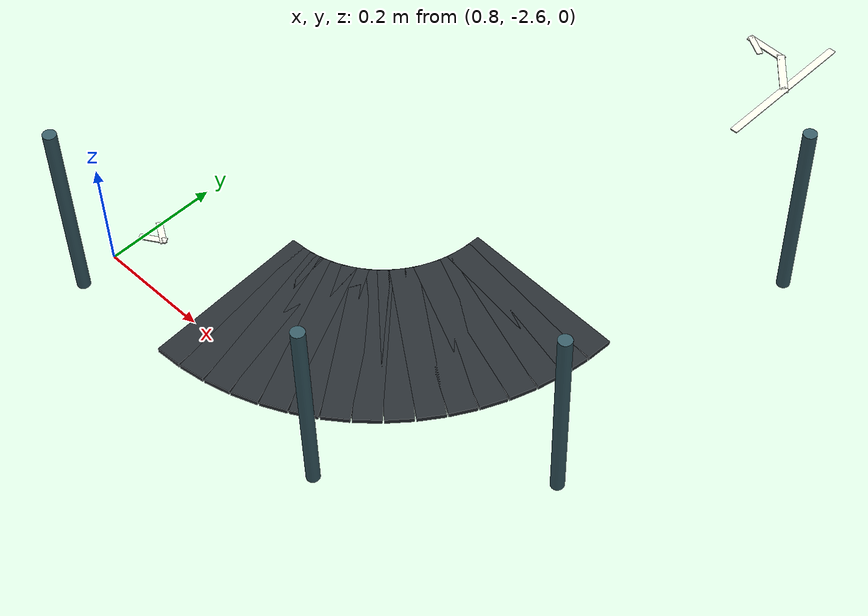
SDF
<sdf version="1.6">
 <world name="sandbox">
  <include><uri>model://sun</uri></include>
  <model name="fence_post_east_0">
   <static>true</static>
   <pose>1.620000 -2.430000 0.170000 0.000000 0.000000 0.000000</pose>
   <link name="body">
    <collision name="collision">
     <geometry><cylinder><radius>0.011000</radius><length>0.340000</length></cylinder></geometry>
    </collision>
    <visual name="visual">
     <geometry><cylinder><radius>0.011000</radius><length>0.340000</length></cylinder></geometry>
     <material><ambient>0.22 0.36 0.40 1</ambient><diffuse>0.22 0.36 0.40 1</diffuse></material>
    </visual>
   </link>
  </model>
  <model name="fence_post_east_1">
   <static>true</static>
   <pose>1.620000 -1.890000 0.170000 0.000000 0.000000 0.000000</pose>
   <link name="body">
    <collision name="collision">
     <geometry><cylinder><radius>0.011000</radius><length>0.340000</length></cylinder></geometry>
    </collision>
    <visual name="visual">
     <geometry><cylinder><radius>0.011000</radius><length>0.340000</length></cylinder></geometry>
     <material><ambient>0.22 0.36 0.40 1</ambient><diffuse>0.22 0.36 0.40 1</diffuse></material>
    </visual>
   </link>
  </model>
  <model name="fence_post_south_4">
   <static>true</static>
   <pose>0.810000 -2.670000 0.170000 0.000000 0.000000 0.000000</pose>
   <link name="body">
    <collision name="collision">
     <geometry><cylinder><radius>0.011000</radius><length>0.340000</length></cylinder></geometry>
    </collision>
    <visual name="visual">
     <geometry><cylinder><radius>0.011000</radius><length>0.340000</length></cylinder></geometry>
     <material><ambient>0.22 0.36 0.40 1</ambient><diffuse>0.22 0.36 0.40 1</diffuse></material>
    </visual>
   </link>
  </model>
  <model name="fence_post_south_5">
   <static>true</static>
   <pose>1.350000 -2.670000 0.170000 0.000000 0.000000 0.000000</pose>
   <link name="body">
    <collision name="collision">
     <geometry><cylinder><radius>0.011000</radius><length>0.340000</length></cylinder></geometry>
    </collision>
    <visual name="visual">
     <geometry><cylinder><radius>0.011000</radius><length>0.340000</length></cylinder></geometry>
     <material><ambient>0.22 0.36 0.40 1</ambient><diffuse>0.22 0.36 0.40 1</diffuse></material>
    </visual>
   </link>
  </model>
  <model name="corner_bottom_right_00">
   <static>true</static>
   <pose>1.349157 -2.192153 0.000000 0.000000 -0.000000 -1.619884</pose>
   <link name="body">
    <visual name="visual">
     <geometry><box><size>0.046347 0.300000 0.008000</size></box></geometry>
     <material><ambient>0.16 0.18 0.20 1</ambient><diffuse>0.16 0.18 0.20 1</diffuse></material>
    </visual>
   </link>
  </model>
  <model name="corner_bottom_right_01">
   <static>true</static>
   <pose>1.345795 -2.226294 0.000000 0.000000 -0.000000 -1.718058</pose>
   <link name="body">
    <visual name="visual">
     <geometry><box><size>0.046347 0.300000 0.008000</size></box></geometry>
     <material><ambient>0.16 0.18 0.20 1</ambient><diffuse>0.16 0.18 0.20 1</diffuse></material>
    </visual>
   </link>
  </model>
  <model name="corner_bottom_right_02">
   <static>true</static>
   <pose>1.339102 -2.259941 0.000000 0.000000 -0.000000 -1.816233</pose>
   <link name="body">
    <visual name="visual">
     <geometry><box><size>0.046347 0.300000 0.008000</size></box></geometry>
     <material><ambient>0.16 0.18 0.20 1</ambient><diffuse>0.16 0.18 0.20 1</diffuse></material>
    </visual>
   </link>
  </model>
  <model name="corner_bottom_right_03">
   <static>true</static>
   <pose>1.329143 -2.292769 0.000000 0.000000 -0.000000 -1.914408</pose>
   <link name="body">
    <visual name="visual">
     <geometry><box><size>0.046347 0.300000 0.008000</size></box></geometry>
     <material><ambient>0.16 0.18 0.20 1</ambient><diffuse>0.16 0.18 0.20 1</diffuse></material>
    </visual>
   </link>
  </model>
  <model name="corner_bottom_right_04">
   <static>true</static>
   <pose>1.316015 -2.324464 0.000000 0.000000 -0.000000 -2.012583</pose>
   <link name="body">
    <visual name="visual">
     <geometry><box><size>0.046347 0.300000 0.008000</size></box></geometry>
     <material><ambient>0.16 0.18 0.20 1</ambient><diffuse>0.16 0.18 0.20 1</diffuse></material>
    </visual>
   </link>
  </model>
  <model name="corner_bottom_right_05">
   <static>true</static>
   <pose>1.299843 -2.354719 0.000000 0.000000 -0.000000 -2.110758</pose>
   <link name="body">
    <visual name="visual">
     <geometry><box><size>0.046347 0.300000 0.008000</size></box></geometry>
     <material><ambient>0.16 0.18 0.20 1</ambient><diffuse>0.16 0.18 0.20 1</diffuse></material>
    </visual>
   </link>
  </model>
  <model name="corner_bottom_right_06">
   <static>true</static>
   <pose>1.280784 -2.383244 0.000000 0.000000 -0.000000 -2.208932</pose>
   <link name="body">
    <visual name="visual">
     <geometry><box><size>0.046347 0.300000 0.008000</size></box></geometry>
     <material><ambient>0.16 0.18 0.20 1</ambient><diffuse>0.16 0.18 0.20 1</diffuse></material>
    </visual>
   </link>
  </model>
  <model name="corner_bottom_right_07">
   <static>true</static>
   <pose>1.259021 -2.409763 0.000000 0.000000 -0.000000 -2.307107</pose>
   <link name="body">
    <visual name="visual">
     <geometry><box><size>0.046347 0.300000 0.008000</size></box></geometry>
     <material><ambient>0.16 0.18 0.20 1</ambient><diffuse>0.16 0.18 0.20 1</diffuse></material>
    </visual>
   </link>
  </model>
  <model name="corner_bottom_right_08">
   <static>true</static>
   <pose>1.234763 -2.434021 0.000000 0.000000 -0.000000 -2.405282</pose>
   <link name="body">
    <visual name="visual">
     <geometry><box><size>0.046347 0.300000 0.008000</size></box></geometry>
     <material><ambient>0.16 0.18 0.20 1</ambient><diffuse>0.16 0.18 0.20 1</diffuse></material>
    </visual>
   </link>
  </model>
  <model name="corner_bottom_right_09">
   <static>true</static>
   <pose>1.208244 -2.455784 0.000000 0.000000 -0.000000 -2.503457</pose>
   <link name="body">
    <visual name="visual">
     <geometry><box><size>0.046347 0.300000 0.008000</size></box></geometry>
     <material><ambient>0.16 0.18 0.20 1</ambient><diffuse>0.16 0.18 0.20 1</diffuse></material>
    </visual>
   </link>
  </model>
  <model name="corner_bottom_right_10">
   <static>true</static>
   <pose>1.179719 -2.474843 0.000000 0.000000 -0.000000 -2.601631</pose>
   <link name="body">
    <visual name="visual">
     <geometry><box><size>0.046347 0.300000 0.008000</size></box></geometry>
     <material><ambient>0.16 0.18 0.20 1</ambient><diffuse>0.16 0.18 0.20 1</diffuse></material>
    </visual>
   </link>
  </model>
  <model name="corner_bottom_right_11">
   <static>true</static>
   <pose>1.149464 -2.491015 0.000000 0.000000 -0.000000 -2.699806</pose>
   <link name="body">
    <visual name="visual">
     <geometry><box><size>0.046347 0.300000 0.008000</size></box></geometry>
     <material><ambient>0.16 0.18 0.20 1</ambient><diffuse>0.16 0.18 0.20 1</diffuse></material>
    </visual>
   </link>
  </model>
  <model name="corner_bottom_right_12">
   <static>true</static>
   <pose>1.117769 -2.504143 0.000000 0.000000 -0.000000 -2.797981</pose>
   <link name="body">
    <visual name="visual">
     <geometry><box><size>0.046347 0.300000 0.008000</size></box></geometry>
     <material><ambient>0.16 0.18 0.20 1</ambient><diffuse>0.16 0.18 0.20 1</diffuse></material>
    </visual>
   </link>
  </model>
  <model name="corner_bottom_right_13">
   <static>true</static>
   <pose>1.084941 -2.514102 0.000000 0.000000 -0.000000 -2.896156</pose>
   <link name="body">
    <visual name="visual">
     <geometry><box><size>0.046347 0.300000 0.008000</size></box></geometry>
     <material><ambient>0.16 0.18 0.20 1</ambient><diffuse>0.16 0.18 0.20 1</diffuse></material>
    </visual>
   </link>
  </model>
  <model name="corner_bottom_right_14">
   <static>true</static>
   <pose>1.051294 -2.520795 0.000000 0.000000 -0.000000 -2.994330</pose>
   <link name="body">
    <visual name="visual">
     <geometry><box><size>0.046347 0.300000 0.008000</size></box></geometry>
     <material><ambient>0.16 0.18 0.20 1</ambient><diffuse>0.16 0.18 0.20 1</diffuse></material>
    </visual>
   </link>
  </model>
  <model name="corner_bottom_right_15">
   <static>true</static>
   <pose>1.017153 -2.524157 0.000000 0.000000 -0.000000 -3.092505</pose>
   <link name="body">
    <visual name="visual">
     <geometry><box><size>0.046347 0.300000 0.008000</size></box></geometry>
     <material><ambient>0.16 0.18 0.20 1</ambient><diffuse>0.16 0.18 0.20 1</diffuse></material>
    </visual>
   </link>
  </model>
  <model name="outer_east_cross_stem">
   <static>true</static>
   <pose>1.350000 -1.607500 0.006000 0.000000 -0.000000 1.570796</pose>
   <link name="body">
    <visual name="visual">
     <geometry><box><size>0.147000 0.014000 0.002000</size></box></geometry>
     <material><ambient>0.96 0.96 0.90 1</ambient><diffuse>0.96 0.96 0.90 1</diffuse></material>
    </visual>
   </link>
  </model>
  <model name="outer_east_cross_straight">
   <static>true</static>
   <pose>1.350000 -1.472500 0.006000 0.000000 -0.000000 1.570796</pose>
   <link name="body">
    <visual name="visual">
     <geometry><box><size>0.147000 0.014000 0.002000</size></box></geometry>
     <material><ambient>0.96 0.96 0.90 1</ambient><diffuse>0.96 0.96 0.90 1</diffuse></material>
    </visual>
   </link>
  </model>
  <model name="outer_east_cross_left_branch">
   <static>true</static>
   <pose>1.322500 -1.509000 0.006000 0.000000 -0.000000 2.296437</pose>
   <link name="body">
    <visual name="visual">
     <geometry><box><size>0.094879 0.014000 0.002000</size></box></geometry>
     <material><ambient>0.96 0.96 0.90 1</ambient><diffuse>0.96 0.96 0.90 1</diffuse></material>
    </visual>
   </link>
  </model>
  <model name="outer_east_cross_left_turn">
   <static>true</static>
   <pose>1.261000 -1.476500 0.006000 0.000000 -0.000000 3.097504</pose>
   <link name="body">
    <visual name="visual">
     <geometry><box><size>0.080066 0.014000 0.002000</size></box></geometry>
     <material><ambient>0.96 0.96 0.90 1</ambient><diffuse>0.96 0.96 0.90 1</diffuse></material>
    </visual>
   </link>
  </model>
  <model name="outer_east_cross_left_head_1">
   <static>true</static>
   <pose>1.242000 -1.484000 0.006000 0.000000 -0.000000 2.601173</pose>
   <link name="body">
    <visual name="visual">
     <geometry><box><size>0.046986 0.011000 0.002000</size></box></geometry>
     <material><ambient>0.96 0.96 0.90 1</ambient><diffuse>0.96 0.96 0.90 1</diffuse></material>
    </visual>
   </link>
  </model>
  <model name="outer_bottom_exit_straight_head_-1">
   <static>true</static>
   <pose>0.820000 -2.534000 0.006000 0.000000 -0.000000 0.540420</pose>
   <link name="body">
    <visual name="visual">
     <geometry><box><size>0.046986 0.011000 0.002000</size></box></geometry>
     <material><ambient>0.96 0.96 0.90 1</ambient><diffuse>0.96 0.96 0.90 1</diffuse></material>
    </visual>
   </link>
  </model>
  <model name="outer_bottom_exit_straight_head_1">
   <static>true</static>
   <pose>0.820000 -2.516000 0.006000 0.000000 -0.000000 -0.540420</pose>
   <link name="body">
    <visual name="visual">
     <geometry><box><size>0.046986 0.011000 0.002000</size></box></geometry>
     <material><ambient>0.96 0.96 0.90 1</ambient><diffuse>0.96 0.96 0.90 1</diffuse></material>
    </visual>
   </link>
  </model>
 </world>
</sdf>
